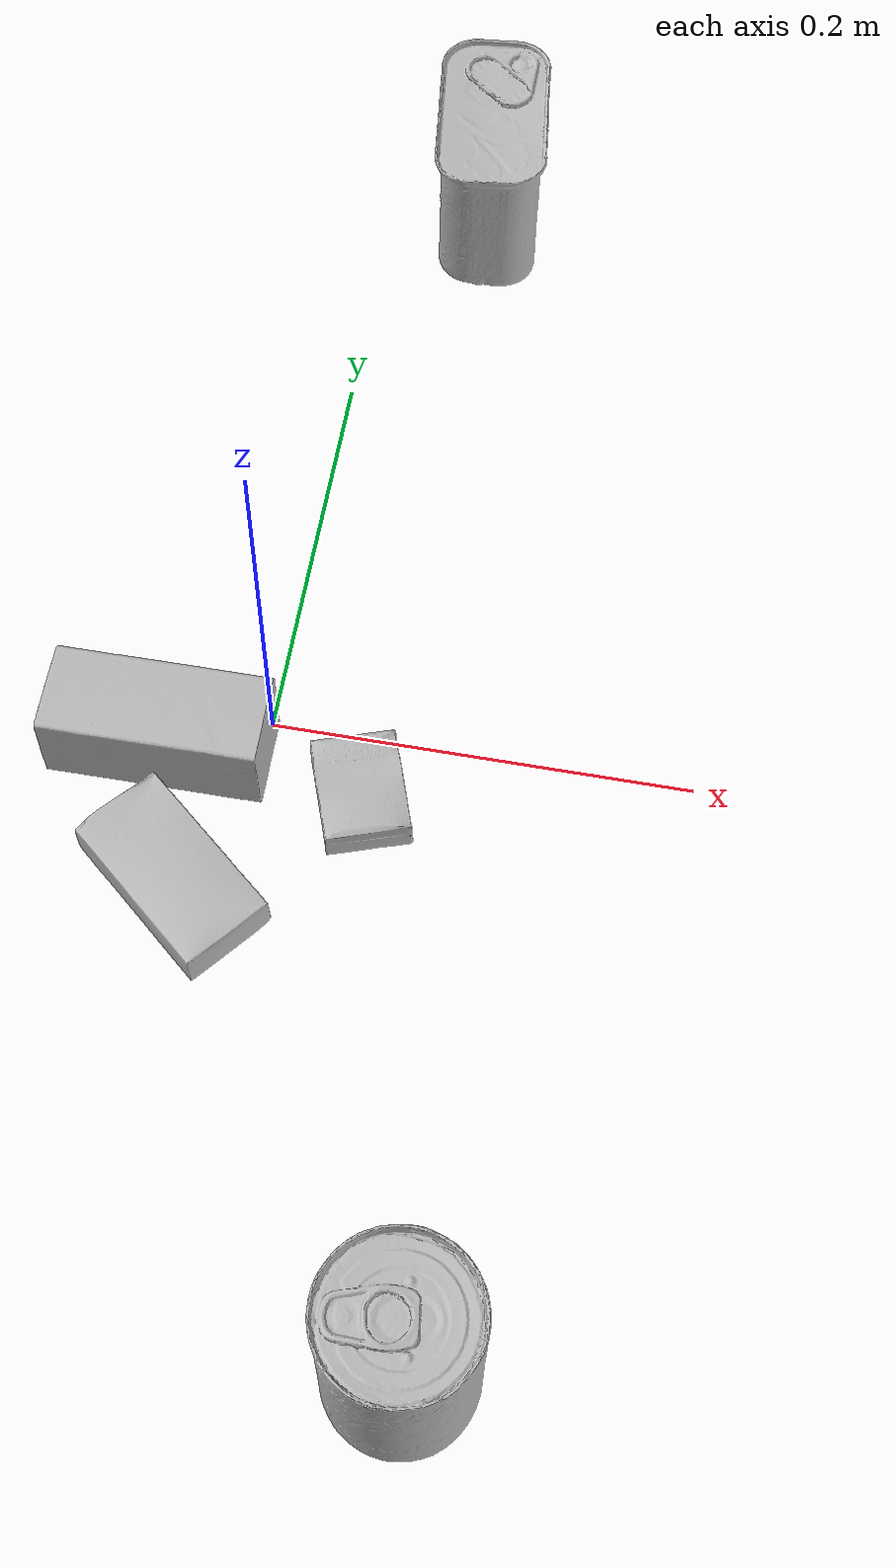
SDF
<sdf version="1.4">
  <world name="default">
    <light name="light1" type="point">
      <pose>0 0 1 0 0 0</pose>
      <diffuse>3 3 3 1</diffuse>
      <specular>3 3 3 1</specular>
    </light>
    <light name="light2" type="point">
      <pose>0 0.5 2 0 0 0</pose>
      <diffuse>1 1 1 1</diffuse>
      <specular>1 1 1 1</specular>
    </light>
    <light name="light3" type="point">
      <pose>0 0.5 2 0 0 0</pose>
      <diffuse>3 3 3 1</diffuse>
      <specular>3 3 3 1</specular>
    </light>
    <scene>
      <ambient>0.7 0.7 0.7</ambient>
    </scene>
    <model name="box1">
      <link name="link_box1">
        <collision name="default">
          <geometry>
            <mesh>
              <uri>model://sugar_box/collision_meshes/collision.obj</uri>
              <scale>0.5 0.5 0.5</scale>
            </mesh>
          </geometry>
          <surface>
            <friction>
              <ode>
                <mu>0.5</mu>
                <mu2>0.5</mu2>
              </ode>
            </friction>
          <contact>
        <ode>
            <max_vel>0</max_vel>
            <min_depth>0.0001</min_depth>
            <kp>1e8</kp>
        </ode>
    </contact></surface>
        </collision>
        <visual name="default">
          <geometry>
            <mesh>
              <uri>model://sugar_box/visual_meshes/visual.dae</uri>
              <scale>0.5 0.5 0.5</scale>
            </mesh>
          </geometry>
        </visual>
        <inertial>
          <mass>0.048160675913095474</mass>
          <pose>0.0005171863595023751 1.924554817378521e-05 -0.00018182402709499002 -0.0004046258638373534 0.0010506635215919557 0.0026153787891515894</pose>
          <inertia>
            <ixx>1.0031835e-05</ixx>
            <iyy>3.2424945e-05</iyy>
            <izz>3.8816543e-05</izz>
            <ixy>0</ixy>
            <ixz>0</ixz>
            <iyz>0</iyz>
          </inertia>
        </inertial>
      </link>
      <pose>-0.02696865051984787 -0.08882485330104828 0.011399301700294018 0.0007758178159487519 -0.02343311606270528 -0.7117752186341336</pose>
    </model>
    <model name="box2">
      <link name="link_box2">
        <collision name="default">
          <geometry>
            <mesh>
              <uri>model://cracker_box/collision_meshes/collision.obj</uri>
              <scale>0.25 0.25 0.25</scale>
            </mesh>
          </geometry>
          <surface>
            <friction>
              <ode>
                <mu>0.5</mu>
                <mu2>0.5</mu2>
              </ode>
            </friction>
          <contact>
        <ode>
            <max_vel>0</max_vel>
            <min_depth>0.0001</min_depth>
            <kp>1e8</kp>
        </ode>
    </contact></surface>
        </collision>
        <visual name="default">
          <geometry>
            <mesh>
              <uri>model://cracker_box/visual_meshes/visual.dae</uri>
              <scale>0.25 0.25 0.25</scale>
            </mesh>
          </geometry>
        </visual>
        <inertial>
          <mass>0.047952666878700256</mass>
          <pose>0.00023660370789002627 6.358561950037256e-05 -0.0004257383698131889 -0.0003162075404896153 -0.011106488669099107 0.002546795234185617</pose>
          <inertia>
            <ixx>7.623136e-06</ixx>
            <iyy>1.2587296e-05</iyy>
            <izz>1.7963224e-05</izz>
            <ixy>0</ixy>
            <ixz>0</ixz>
            <iyz>0</iyz>
          </inertia>
        </inertial>
      </link>
      <pose>0.04871739074587822 -0.031865522265434265 0.009120450355112553 -0.011788045480646256 -0.0073671301317653586 -1.241104127139869</pose>
    </model>
    <model name="box3">
      <link name="link_box3">
        <collision name="default">
          <geometry>
            <mesh>
              <uri>model://wood_block/collision_meshes/collision.obj</uri>
              <scale>0.5 0.5 0.5</scale>
            </mesh>
          </geometry>
          <surface>
            <friction>
              <ode>
                <mu>0.5</mu>
                <mu2>0.5</mu2>
              </ode>
            </friction>
          <contact>
        <ode>
            <max_vel>0</max_vel>
            <min_depth>0.0001</min_depth>
            <kp>1e8</kp>
        </ode>
    </contact></surface>
        </collision>
        <visual name="default">
          <geometry>
            <mesh>
              <uri>model://wood_block/visual_meshes/visual.dae</uri>
              <scale>0.5 0.5 0.5</scale>
            </mesh>
          </geometry>
        </visual>
        <inertial>
          <mass>0.27162742614746094</mass>
          <pose>-2.9066577553749084e-06 -0.000285404734313488 0.00013204291462898254 -0.05220780121661256 -0.005192696561201931 -0.006861379819720353</pose>
          <inertia>
            <ixx>9.086965e-05</ixx>
            <iyy>0.00028705722</iyy>
            <izz>0.0002859835</izz>
            <ixy>0</ixy>
            <ixz>0</ixz>
            <iyz>0</iyz>
          </inertia>
        </inertial>
      </link>
      <pose>-0.04827772080898285 -0.020889820531010628 0.0226292684674263 -0.0052085630376390675 0.005718646136462632 -3.1350972202152216</pose>
    </model>
    <model name="can1">
      <link name="link_can1">
        <collision name="default">
          <geometry>
            <mesh>
              <uri>model://tomato_soup_can/collision_meshes/collision.obj</uri>
              <scale>1.0 1.0 1.0</scale>
            </mesh>
          </geometry>
          <surface>
            <friction>
              <ode>
                <mu>0.5</mu>
                <mu2>0.5</mu2>
              </ode>
            </friction>
          <contact>
        <ode>
            <max_vel>0</max_vel>
            <min_depth>0.0001</min_depth>
            <kp>1e8</kp>
        </ode>
    </contact></surface>
        </collision>
        <visual name="default">
          <geometry>
            <mesh>
              <uri>model://tomato_soup_can/visual_meshes/visual.dae</uri>
              <scale>1.0 1.0 1.0</scale>
            </mesh>
          </geometry>
        </visual>
        <inertial>
          <mass>0.33680883049964905</mass>
          <pose>0.0001265227037947625 0.0001080552683561109 -0.0017973986687138677 0.007020065933643549 0.0004229964102555597 -0.009903579397299064</pose>
          <inertia>
            <ixx>0.00036928226</ixx>
            <iyy>0.0003671481</iyy>
            <izz>0.00019139561</izz>
            <ixy>0</ixy>
            <ixz>0</ixz>
            <iyz>0</iyz>
          </inertia>
        </inertial>
      </link>
      <pose>0.11289025843143463 -0.28557288646698 0.05127401277422905 -4.264372079784505e-07 -6.183161876691069e-07 -1.7162614172297086</pose>
    </model>
    <model name="can2">
      <link name="link_can2">
        <collision name="default">
          <geometry>
            <mesh>
              <uri>model://potted_meat_can/collision_meshes/collision.obj</uri>
              <scale>1.0 1.0 1.0</scale>
            </mesh>
          </geometry>
          <surface>
            <friction>
              <ode>
                <mu>0.5</mu>
                <mu2>0.5</mu2>
              </ode>
            </friction>
          <contact>
        <ode>
            <max_vel>0</max_vel>
            <min_depth>0.0001</min_depth>
            <kp>1e8</kp>
        </ode>
    </contact></surface>
        </collision>
        <visual name="default">
          <geometry>
            <mesh>
              <uri>model://potted_meat_can/visual_meshes/visual.dae</uri>
              <scale>1.0 1.0 1.0</scale>
            </mesh>
          </geometry>
        </visual>
        <inertial>
          <mass>0.5009446144104004</mass>
          <pose>0.00022888141393195838 -5.9891164710279554e-05 -0.0006367440801113844 -0.028093347044227477 -0.007232596108467961 0.015406262357490775</pose>
          <inertia>
            <ixx>0.0006444129</ixx>
            <iyy>0.0003915297</iyy>
            <izz>0.00046868768</izz>
            <ixy>0</ixy>
            <ixz>0</ixz>
            <iyz>0</iyz>
          </inertia>
        </inertial>
      </link>
      <pose>0.05090058594942093 0.32967397570610046 0.04212800785899162 -6.88338027654168e-08 -4.151447291931888e-07 -3.037487232152099</pose>
    </model>
  <physics type="ode">
      <max_contacts>50</max_contacts>
      <ode>
        <solver>
          <type>quick</type>
          <iters>75</iters>
        </solver>
        <constraints>
          <contact_max_correcting_vel>0</contact_max_correcting_vel>
          <contact_surface_layer>0</contact_surface_layer>
        </constraints>
      </ode>
    </physics></world>
</sdf>
